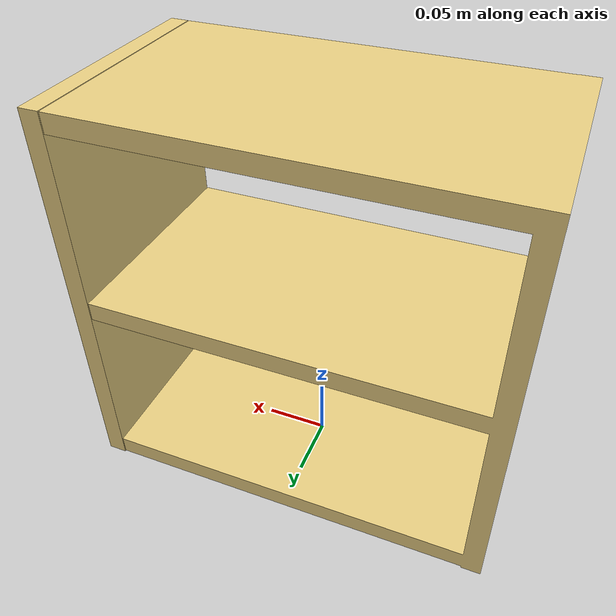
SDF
<?xml version="1.0" ?>
<sdf version="1.4">
    <world name='default'>
        <model name="Amazon Pod">
            <static>1</static>
            <pose>0 0 0 0 0 0</pose>
            <link name="some_link">
                <visual name="pod_visual">
                    <pose>0 0 0 0 0 0</pose>
                    <geometry>
                        <mesh>
                            <uri>simple_shelf.stl</uri>
                            <scale>0.03 0.03 0.03</scale>
                        </mesh>
                    </geometry>
                    <collision>
                        <pose>0 0 0 0 0 0</pose>
                        <geometry>
                            <mesh>
                                <uri>simple_shelf.stl</uri>
                                <scale>0.03 0.03 0.03</scale>
                            </mesh>
                        </geometry>
                    </collision>
                    <material>
                        <diffuse>0.9 0.8 0.5 1</diffuse>
                    </material>
                </visual>
            </link>
        </model>
    </world>
</sdf>
